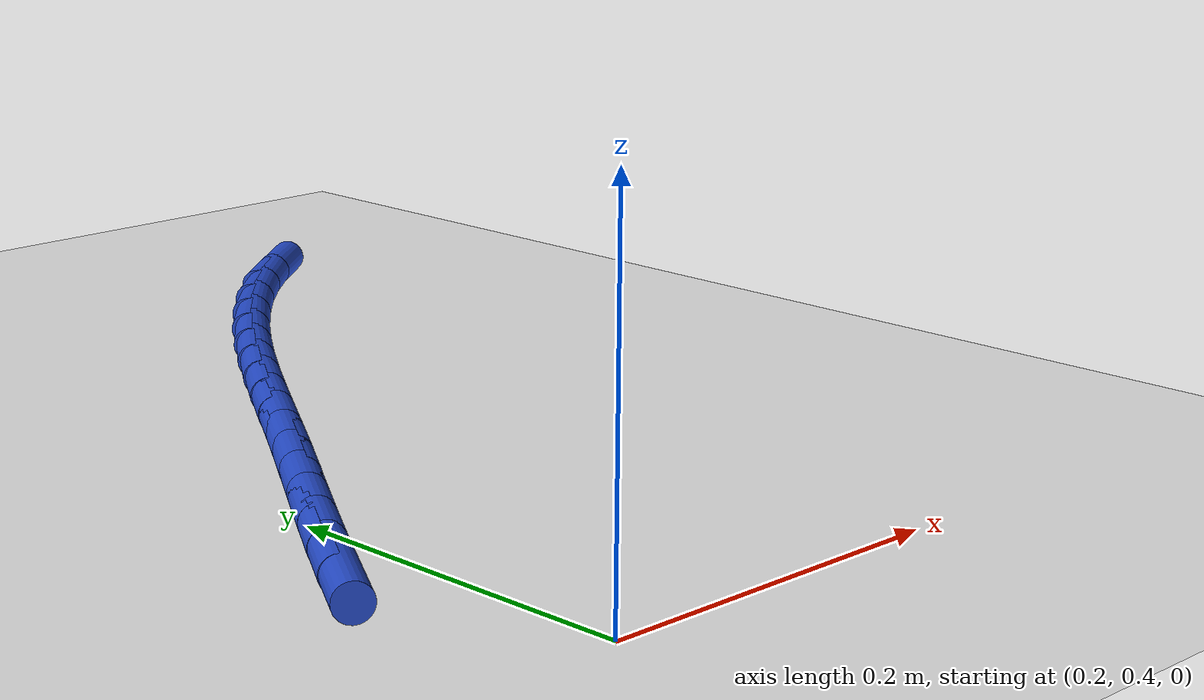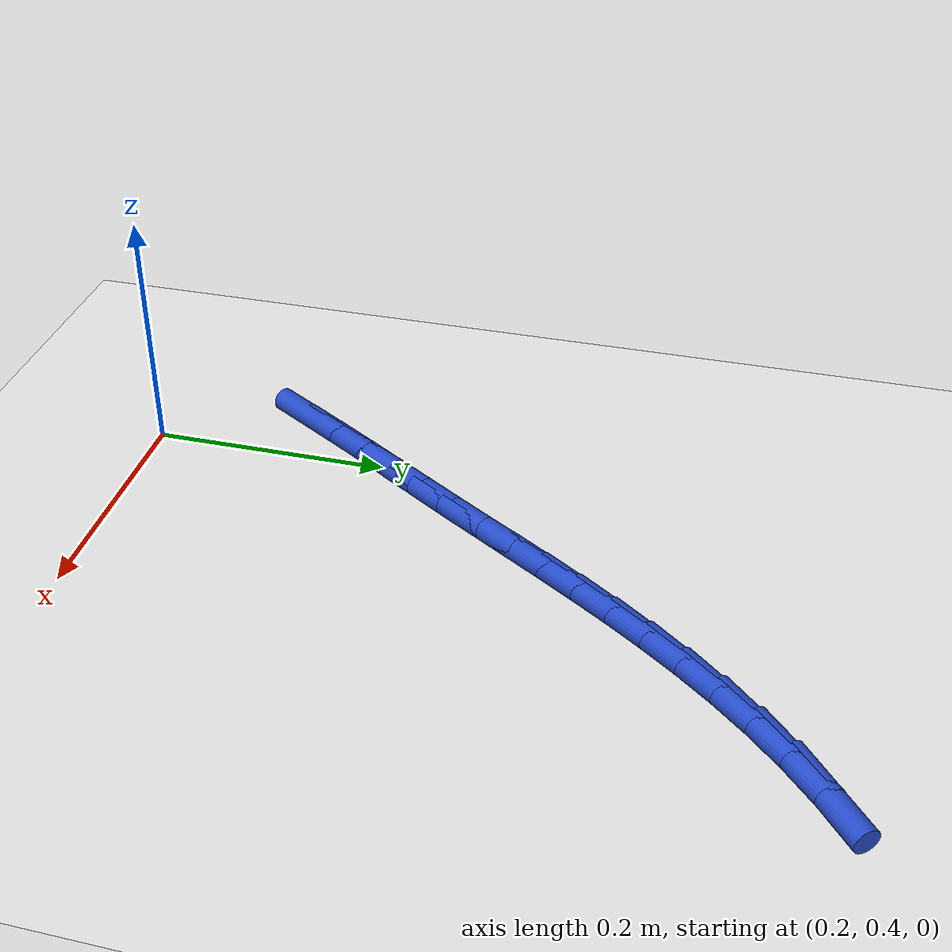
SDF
<sdf version="1.6">
 <world name="default">
  <model name="ground_plane">
   <static>1</static>
   <link name="link">
    <collision name="collision">
     <geometry><plane><normal>0 0 1</normal><size>100 100</size></plane></geometry>
     <surface><friction><ode><mu>100</mu><mu2>50</mu2></ode></friction></surface>
    </collision>
    <visual name="visual">
     <cast_shadows>0</cast_shadows>
     <geometry><plane><normal>0 0 1</normal><size>100 100</size></plane></geometry>
     <material>
      <script><uri>file://media/materials/scripts/gazebo.material</uri><name>Gazebo/WhiteGlow</name></script>
     </material>
    </visual>
   </link>
  </model>
  <model name="line">
   <link name="link_16">
    <pose>0.15490121301319543 0.5232861720204258 0.01 0 1.57 1.0176127412670954</pose>
    <collision name="collision">
     <geometry><cylinder><radius>0.01</radius><length>0.08</length></cylinder></geometry>
    </collision>
    <visual name="visual">
     <material>
      <script><name>Gazebo/Blue</name><uri>file://media/materials/scripts/gazebo.material</uri></script>
     </material>
     <geometry><cylinder><radius>0.01</radius><length>0.08</length></cylinder></geometry>
    </visual>
   </link>
   <link name="link_17">
    <pose>0.1731761620227331 0.5528815147044558 0.01 0 1.57 1.0064325799901488</pose>
    <collision name="collision">
     <geometry><cylinder><radius>0.01</radius><length>0.08</length></cylinder></geometry>
    </collision>
    <visual name="visual">
     <material>
      <script><name>Gazebo/Blue</name><uri>file://media/materials/scripts/gazebo.material</uri></script>
     </material>
     <geometry><cylinder><radius>0.01</radius><length>0.08</length></cylinder></geometry>
    </visual>
   </link>
   <link name="link_18">
    <pose>0.19182262040047812 0.5823366899358082 0.01 0 1.57 0.9993373445620372</pose>
    <collision name="collision">
     <geometry><cylinder><radius>0.01</radius><length>0.08</length></cylinder></geometry>
    </collision>
    <visual name="visual">
     <material>
      <script><name>Gazebo/Blue</name><uri>file://media/materials/scripts/gazebo.material</uri></script>
     </material>
     <geometry><cylinder><radius>0.01</radius><length>0.08</length></cylinder></geometry>
    </visual>
   </link>
   <link name="link_19">
    <pose>0.2107095716017268 0.6117085456041523 0.01 0 1.57 0.9962936485879014</pose>
    <collision name="collision">
     <geometry><cylinder><radius>0.01</radius><length>0.08</length></cylinder></geometry>
    </collision>
    <visual name="visual">
     <material>
      <script><name>Gazebo/Blue</name><uri>file://media/materials/scripts/gazebo.material</uri></script>
     </material>
     <geometry><cylinder><radius>0.01</radius><length>0.08</length></cylinder></geometry>
    </visual>
   </link>
   <link name="link_20">
    <pose>0.22970599908177525 0.6410539295991576 0.01 0 1.57 0.9972827271291723</pose>
    <collision name="collision">
     <geometry><cylinder><radius>0.01</radius><length>0.08</length></cylinder></geometry>
    </collision>
    <visual name="visual">
     <material>
      <script><name>Gazebo/Blue</name><uri>file://media/materials/scripts/gazebo.material</uri></script>
     </material>
     <geometry><cylinder><radius>0.01</radius><length>0.08</length></cylinder></geometry>
    </visual>
   </link>
   <link name="link_21">
    <pose>0.24868088629591947 0.6704296898104926 0.01 0 1.57 1.0022805484174506</pose>
    <collision name="collision">
     <geometry><cylinder><radius>0.01</radius><length>0.08</length></cylinder></geometry>
    </collision>
    <visual name="visual">
     <material>
      <script><name>Gazebo/Blue</name><uri>file://media/materials/scripts/gazebo.material</uri></script>
     </material>
     <geometry><cylinder><radius>0.01</radius><length>0.08</length></cylinder></geometry>
    </visual>
   </link>
   <link name="link_22">
    <pose>0.26750384115414266 0.6998922755772916 0.01 0 1.57 1.0078490235096111</pose>
    <collision name="collision">
     <geometry><cylinder><radius>0.01</radius><length>0.08</length></cylinder></geometry>
    </collision>
    <visual name="visual">
     <material>
      <script><name>Gazebo/Blue</name><uri>file://media/materials/scripts/gazebo.material</uri></script>
     </material>
     <geometry><cylinder><radius>0.01</radius><length>0.08</length></cylinder></geometry>
    </visual>
   </link>
   <link name="link_23">
    <pose>0.28614607845390094 0.7294332868904965 0.01 0 1.57 1.0067495019673958</pose>
    <collision name="collision">
     <geometry><cylinder><radius>0.01</radius><length>0.08</length></cylinder></geometry>
    </collision>
    <visual name="visual">
     <material>
      <script><name>Gazebo/Blue</name><uri>file://media/materials/scripts/gazebo.material</uri></script>
     </material>
     <geometry><cylinder><radius>0.01</radius><length>0.08</length></cylinder></geometry>
    </visual>
   </link>
   <link name="link_24">
    <pose>0.30479199109993504 0.7589082654319145 0.01 0 1.57 0.9980333671314894</pose>
    <collision name="collision">
     <geometry><cylinder><radius>0.01</radius><length>0.08</length></cylinder></geometry>
    </collision>
    <visual name="visual">
     <material>
      <script><name>Gazebo/Blue</name><uri>file://media/materials/scripts/gazebo.material</uri></script>
     </material>
     <geometry><cylinder><radius>0.01</radius><length>0.08</length></cylinder></geometry>
    </visual>
   </link>
   <link name="link_25">
    <pose>0.32365283099437797 0.7881556104580976 0.01 0 1.57 0.981636412650036</pose>
    <collision name="collision">
     <geometry><cylinder><radius>0.01</radius><length>0.08</length></cylinder></geometry>
    </collision>
    <visual name="visual">
     <material>
      <script><name>Gazebo/Blue</name><uri>file://media/materials/scripts/gazebo.material</uri></script>
     </material>
     <geometry><cylinder><radius>0.01</radius><length>0.08</length></cylinder></geometry>
    </visual>
   </link>
   <link name="link_26">
    <pose>0.342939850039362 0.8170137212255977 0.01 0 1.57 0.9574823043226727</pose>
    <collision name="collision">
     <geometry><cylinder><radius>0.01</radius><length>0.08</length></cylinder></geometry>
    </collision>
    <visual name="visual">
     <material>
      <script><name>Gazebo/Blue</name><uri>file://media/materials/scripts/gazebo.material</uri></script>
     </material>
     <geometry><cylinder><radius>0.01</radius><length>0.08</length></cylinder></geometry>
    </visual>
   </link>
   <link name="link_27">
    <pose>0.3628643001370203 0.8453209969909671 0.01 0 1.57 0.9255116972324932</pose>
    <collision name="collision">
     <geometry><cylinder><radius>0.01</radius><length>0.08</length></cylinder></geometry>
    </collision>
    <visual name="visual">
     <material>
      <script><name>Gazebo/Blue</name><uri>file://media/materials/scripts/gazebo.material</uri></script>
     </material>
     <geometry><cylinder><radius>0.01</radius><length>0.08</length></cylinder></geometry>
    </visual>
   </link>
   <link name="link_28">
    <pose>0.3836374331894852 0.872915837010757 0.01 0 1.57 0.8857264147468928</pose>
    <collision name="collision">
     <geometry><cylinder><radius>0.01</radius><length>0.08</length></cylinder></geometry>
    </collision>
    <visual name="visual">
     <material>
      <script><name>Gazebo/Blue</name><uri>file://media/materials/scripts/gazebo.material</uri></script>
     </material>
     <geometry><cylinder><radius>0.01</radius><length>0.08</length></cylinder></geometry>
    </visual>
   </link>
   <link name="link_29">
    <pose>0.4054705010988892 0.8996366405415197 0.01 0 1.57 0.8382479046032365</pose>
    <collision name="collision">
     <geometry><cylinder><radius>0.01</radius><length>0.08</length></cylinder></geometry>
    </collision>
    <visual name="visual">
     <material>
      <script><name>Gazebo/Blue</name><uri>file://media/materials/scripts/gazebo.material</uri></script>
     </material>
     <geometry><cylinder><radius>0.01</radius><length>0.08</length></cylinder></geometry>
    </visual>
   </link>
   <link name="link_30">
    <pose>0.4285747557673655 0.9253218068398074 0.01 0 1.57 0.7833856186105919</pose>
    <collision name="collision">
     <geometry><cylinder><radius>0.01</radius><length>0.08</length></cylinder></geometry>
    </collision>
    <visual name="visual">
     <material>
      <script><name>Gazebo/Blue</name><uri>file://media/materials/scripts/gazebo.material</uri></script>
     </material>
     <geometry><cylinder><radius>0.01</radius><length>0.08</length></cylinder></geometry>
    </visual>
   </link>
   <link name="link_31">
    <pose>0.45316144909704636 0.9498097351621716 0.01 0 1.57 0.7217119381056243</pose>
    <collision name="collision">
     <geometry><cylinder><radius>0.01</radius><length>0.08</length></cylinder></geometry>
    </collision>
    <visual name="visual">
     <material>
      <script><name>Gazebo/Blue</name><uri>file://media/materials/scripts/gazebo.material</uri></script>
     </material>
     <geometry><cylinder><radius>0.01</radius><length>0.08</length></cylinder></geometry>
    </visual>
   </link>
   <link name="link_32">
    <pose>0.4794414225413396 0.9729387739725748 0.01 0 1.57 0.6557624963802643</pose>
    <collision name="collision">
     <geometry><cylinder><radius>0.01</radius><length>0.08</length></cylinder></geometry>
    </collision>
    <visual name="visual">
     <material>
      <script><name>Gazebo/Blue</name><uri>file://media/materials/scripts/gazebo.material</uri></script>
     </material>
     <geometry><cylinder><radius>0.01</radius><length>0.08</length></cylinder></geometry>
    </visual>
   </link>
  </model>
 </world>
</sdf>
